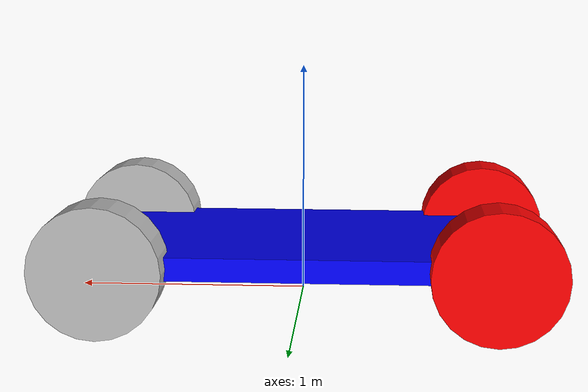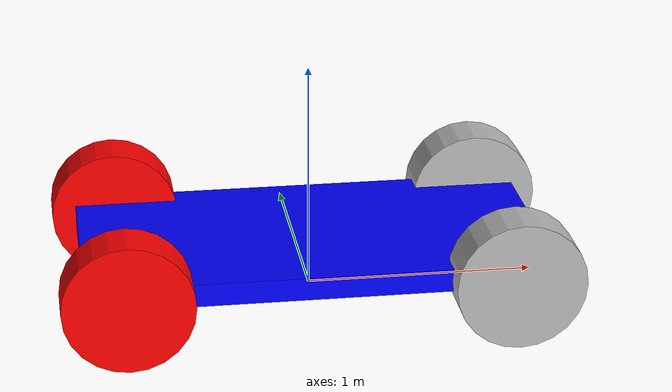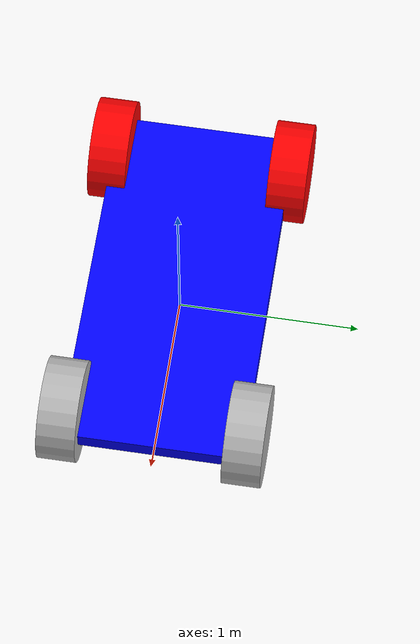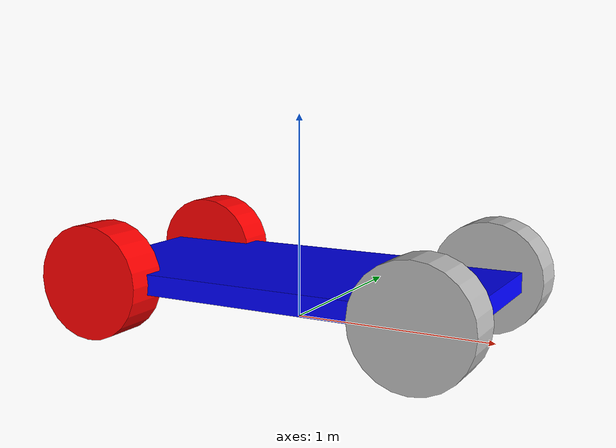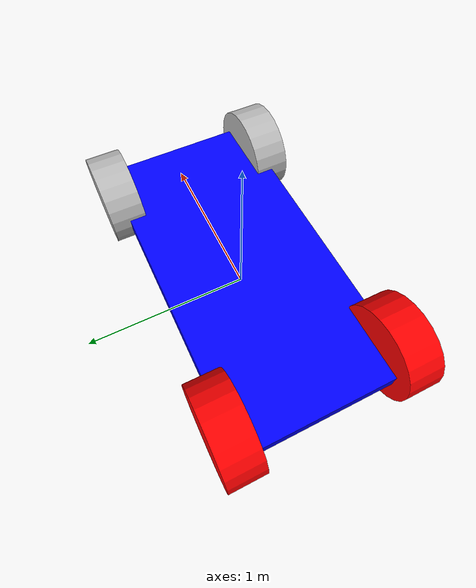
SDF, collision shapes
<?xml version="1.0" ?>
<sdf version="1.10">
    <model name='caddy' canonical_link='base_footprint'>
         <link name="base_footprint">
            <pose relative_to="__model__">0 0 0 0 0 0</pose>
        </link>

        <!--base_link-->
        <link name='base_link'>
            <pose relative_to="base_footprint">0 0 0.2 0 0 0</pose>
            <inertial> <!--inertial properties of the link mass, inertia matix-->
                <mass>1.14395</mass>
                <inertia>
                    <ixx>0.095329</ixx>
                    <ixy>0</ixy>
                    <ixz>0</ixz>
                    <iyy>0.381317</iyy>
                    <iyz>0</iyz>
                    <izz>0.476646</izz>
                </inertia>
            </inertial>
            <visual name='visual'>
                <geometry>
                     <mesh>
                      <scale>1 1 1</scale>
                      <uri>file:///home/rinese/caddy_ws/src/caddy_pkg/stl/rbcar_chassis.stl</uri>
                    </mesh>
                </geometry>
                <!--color-->
                <material>
                    <ambient>0.0 0.0 1.0 1</ambient>
                    <diffuse>0.0 0.0 1.0 1</diffuse>
                    <specular>0.0 0.0 1.0 1</specular>
                </material>
            </visual>
            <collision name='collision'>
                <geometry>
                    <box>
                        <size>2.0 1.0 0.1</size>
                    </box>
                </geometry>
            </collision>
        </link>
        <joint name="base_to_base" type="fixed">
            <parent>base_footprint</parent>
            <child>base_link</child>
        </joint>
        <!--left back wheel-->
        <link name='wheel_left_back_link'>
            <pose relative_to="base_link">-0.825 0.5034 0 -1.5707 0 0</pose>
            <inertial>
                <mass>1</mass>
                <inertia>
                    <ixx>0.043333</ixx>
                    <ixy>0</ixy>
                    <ixz>0</ixz>
                    <iyy>0.043333</iyy>
                    <iyz>0</iyz>
                    <izz>0.08</izz>
                </inertia>
            </inertial>
            <visual name='visual'>
                <geometry>
                    <cylinder>
                        <radius>0.28</radius>
                        <length>0.212</length>
                    </cylinder>
                </geometry>
                <material>
                    <ambient>1.0 0.0 0.0 1</ambient>
                    <diffuse>1.0 0.0 0.0 1</diffuse>
                    <specular>1.0 0.0 0.0 1</specular>
                </material>
            </visual>
            <collision name='collision'>
                <geometry>
                    <cylinder>
                        <radius>0.28</radius>
                        <length>0.212</length>
                    </cylinder>
                </geometry>
            </collision>
        </link>
         <!--Joint Left wheel-->
        <joint name='wheel_left_back_joint' type='revolute'>
            <pose relative_to='wheel_left_back_link'/>

            <parent>base_link</parent>
            <child>wheel_left_back_link</child>
            <axis>
                <xyz expressed_in='__model__'>0 1 0</xyz> <!--can be descired to any frame or even arbitrary frames-->
                <limit>
                    <lower>-1.79769e+308</lower>    <!--negative infinity-->
                    <upper>1.79769e+308</upper>     <!--positive infinity-->
                </limit>
            </axis>
        </joint>
        <!--right back wheel-->
         <link name='wheel_right_back_link'>
            <pose relative_to="base_link">-0.825 -0.5034 0 -1.5707 0 0</pose>
            <inertial>
                <mass>1</mass>
                <inertia>
                    <ixx>0.043333</ixx>
                    <ixy>0</ixy>
                    <ixz>0</ixz>
                    <iyy>0.043333</iyy>
                    <iyz>0</iyz>
                    <izz>0.08</izz>
                </inertia>
            </inertial>
            <visual name='visual'>
                <geometry>
                    <cylinder>
                        <radius>0.28</radius>
                        <length>0.212</length>
                    </cylinder>
                </geometry>
                <material>
                    <ambient>1.0 0.0 0.0 1</ambient>
                    <diffuse>1.0 0.0 0.0 1</diffuse>
                    <specular>1.0 0.0 0.0 1</specular>
                </material>
            </visual>
            <collision name='collision'>
                <geometry>
                    <cylinder>
                        <radius>0.28</radius>
                        <length>0.212</length>
                    </cylinder>
                </geometry>
            </collision>
        </link>
        <!--Joint Right wheel-->
        <joint name='wheel_right_back_joint' type='revolute'>
            <pose relative_to='wheel_right_back_link'/>
            <parent>base_link</parent>
            <child>wheel_right_back_link</child>
            <axis>
                <xyz expressed_in='__model__'>0 1 0</xyz>
                <limit>
                    <lower>-1.79769e+308</lower>    <!--negative infinity-->
                    <upper>1.79769e+308</upper>     <!--positive infinity-->
                </limit>
            </axis>
        </joint>
        <!-- Hub (mangueta) delantero izquierdo -->
        <link name='left_front_hub_link'>
          <pose relative_to="base_link">0.825 0.5034 0 0 0 0</pose>
          <inertial>
            <mass>0.3</mass>
            <inertia>
              <ixx>1e-3</ixx><ixy>0</ixy><ixz>0</ixz>
              <iyy>1e-3</iyy><iyz>0</iyz><izz>1e-3</izz>
            </inertia>
          </inertial>
        </link>
        <!-- Rueda delantera izquierda -->
        <link name='wheel_left_front_link'>
          <!-- Rotamos el cilindro -90º sobre X para que su eje quede en Y (como tus traseras) -->
          <pose relative_to="left_front_hub_link">0 0 0 -1.5707 0 0</pose>
          <inertial>
            <mass>1</mass>
            <inertia>
              <ixx>0.043333</ixx><ixy>0</ixy><ixz>0</ixz>
              <iyy>0.043333</iyy><iyz>0</iyz><izz>0.08</izz>
            </inertia>
          </inertial>
          <visual name='visual'>
            <geometry><cylinder><radius>0.28</radius><length>0.212</length></cylinder></geometry>
          </visual>
          <collision name='collision'>
            <geometry><cylinder><radius>0.28</radius><length>0.212</length></cylinder></geometry>
          </collision>
        </link>
        <!-- Articulación de dirección (vertical Z) -->
        <joint name='left_front_steer_joint' type='revolute'>
          <parent>base_link</parent>
          <child>left_front_hub_link</child>
          <axis>
            <xyz expressed_in='__model__'>0 0 1</xyz>
            <limit>
              <!-- límites de dirección, p.ej. ±35º -->
              <lower>-0.61</lower>
              <upper>0.61</upper>
            </limit>
            <dynamics>
              <damping>0.5</damping>
            </dynamics>
          </axis>
        </joint>
        <!-- Articulación de giro de la rueda (lateral Y) -->
        <joint name='left_front_wheel_joint' type='revolute'>
          <parent>left_front_hub_link</parent>
          <child>wheel_left_front_link</child>
          <axis>
            <xyz expressed_in='__model__'>0 1 0</xyz>
            <limit>
              <lower>-1.79769e+308</lower>
              <upper> 1.79769e+308</upper>
            </limit>
            <dynamics>
              <damping>0.1</damping>
            </dynamics>
          </axis>
        </joint>
        <!-- Hub (mangueta) delantero derecho -->
        <link name='right_front_hub_link'>
          <pose relative_to="base_link">0.825 -0.5034 0 0 0 0</pose>
          <inertial>
            <mass>0.3</mass>
            <inertia>
              <ixx>1e-3</ixx><ixy>0</ixy><ixz>0</ixz>
              <iyy>1e-3</iyy><iyz>0</iyz><izz>1e-3</izz>
            </inertia>
          </inertial>
        </link>

        <!-- Rueda delantera derecha -->
        <link name='wheel_right_front_link'>
          <!-- Rotamos el cilindro -90º sobre X para que su eje quede en Y (como tus traseras) -->
          <pose relative_to="right_front_hub_link">0 0 0 -1.5707 0 0</pose>
          <inertial>
            <mass>1</mass>
            <inertia>
              <ixx>0.043333</ixx><ixy>0</ixy><ixz>0</ixz>
              <iyy>0.043333</iyy><iyz>0</iyz><izz>0.08</izz>
            </inertia>
          </inertial>
          <visual name='visual'>
            <geometry><cylinder><radius>0.28</radius><length>0.212</length></cylinder></geometry>
          </visual>
          <collision name='collision'>
            <geometry><cylinder><radius>0.28</radius><length>0.212</length></cylinder></geometry>
          </collision>
        </link>

        <!-- Articulación de dirección (vertical Z) -->
        <joint name='right_front_steer_joint' type='revolute'>
          <parent>base_link</parent>
          <child>right_front_hub_link</child>
          <axis>
            <xyz expressed_in='__model__'>0 0 1</xyz>
            <limit>
              <!-- límites de dirección, p.ej. ±35º -->
              <lower>-0.61</lower>
              <upper>0.61</upper>
            </limit>
            <dynamics>
              <damping>0.5</damping>
            </dynamics>
          </axis>
        </joint>

        <!-- Articulación de giro de la rueda (lateral Y) -->
        <joint name='right_front_wheel_joint' type='revolute'>
          <parent>right_front_hub_link</parent>
          <child>wheel_right_front_link</child>
          <axis>
            <xyz expressed_in='__model__'>0 1 0</xyz>
            <limit>
              <lower>-1.79769e+308</lower>
              <upper> 1.79769e+308</upper>
            </limit>
            <dynamics>
              <damping>0.1</damping>
            </dynamics>
          </axis>
        </joint>
    </model>
</sdf>
